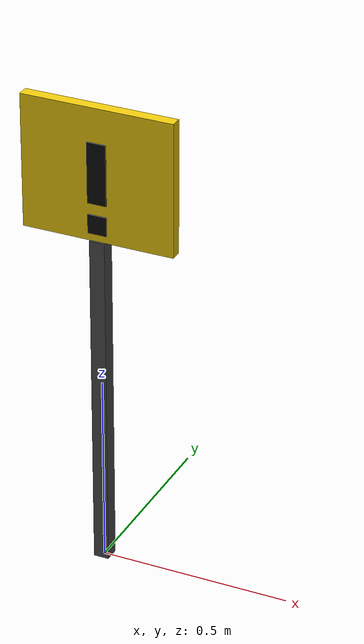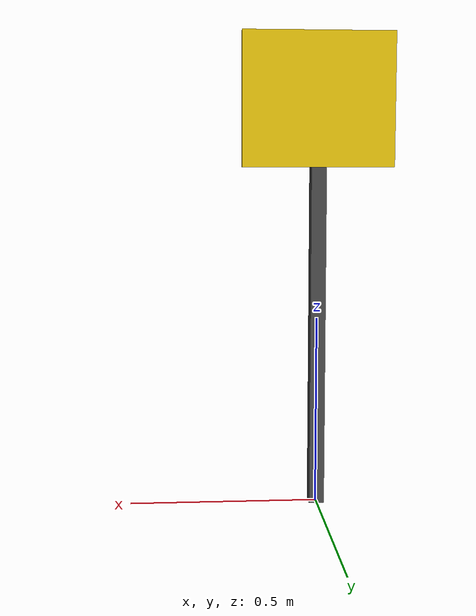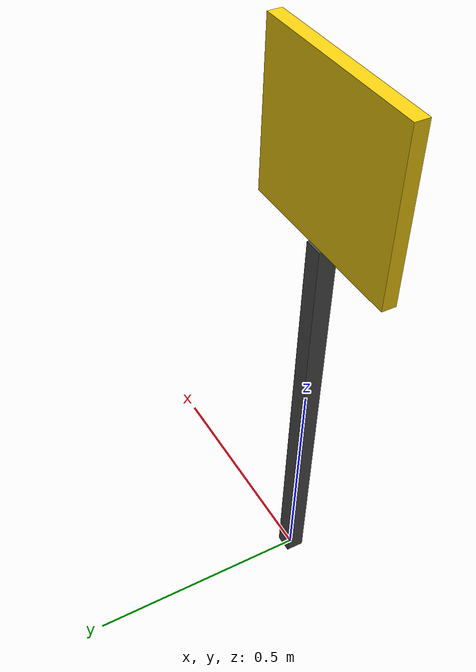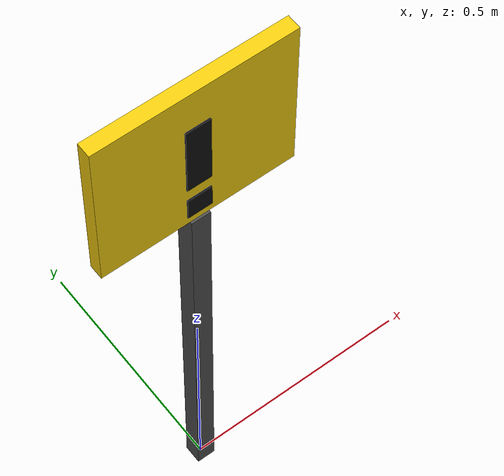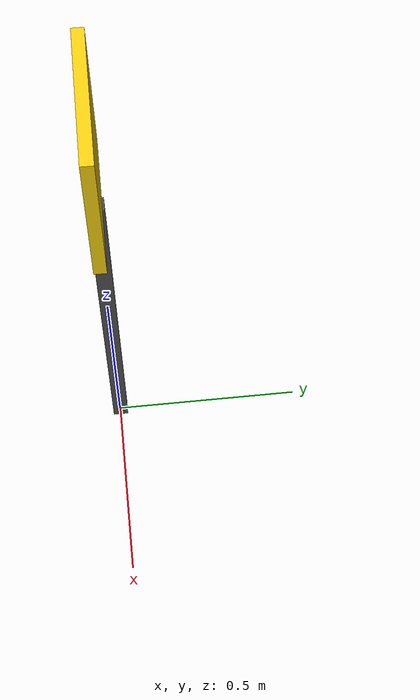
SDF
<?xml version="1.0"?>
<sdf version="1.9">
  <model name="hazard_sign">
    <static>true</static>

    <!-- Label plugin at model level — applies to all visuals -->
    <plugin filename="gz-sim-label-system" name="gz::sim::systems::Label">
      <label>3</label>
    </plugin>

    <!-- ── Stand / pole ─────────────────────────────────────────────────── -->
    <link name="pole">
      <pose>0 0 0.45 0 0 0</pose>

      <visual name="pole_visual">
        <geometry>
          <box>
            <size>0.04 0.04 0.90</size>
          </box>
        </geometry>
        <material>
          <ambient>0.3 0.3 0.3 1</ambient>
          <diffuse>0.3 0.3 0.3 1</diffuse>
        </material>
      </visual>

      <collision name="pole_collision">
        <geometry>
          <box>
            <size>0.04 0.04 0.90</size>
          </box>
        </geometry>
      </collision>
    </link>

    <!-- ── Sign board (yellow) ───────────────────────────────────────────── -->
    <link name="sign_board">
      <!-- bottom of sign sits at top of pole (0.90), centre at 0.90 + 0.175 -->
      <pose>0 0 1.075 0 0 0</pose>

      <visual name="sign_visual">
        <geometry>
          <box>
            <size>0.40 0.03 0.35</size>
          </box>
        </geometry>
        <material>
          <ambient>0.95 0.80 0.05 1</ambient>
          <diffuse>0.95 0.80 0.05 1</diffuse>
          <specular>0.2 0.2 0.0 1</specular>
        </material>
      </visual>

      <collision name="sign_collision">
        <geometry>
          <box>
            <size>0.40 0.03 0.35</size>
          </box>
        </geometry>
      </collision>
    </link>

    <!-- ── Exclamation mark — vertical bar (decal on front face of sign) ── -->
    <link name="excl_bar">
      <!-- front face of sign is at y=-0.015; push decal just forward -->
      <pose>0 -0.016 1.08 0 0 0</pose>

      <visual name="excl_bar_visual">
        <geometry>
          <box>
            <size>0.05 0.004 0.16</size>
          </box>
        </geometry>
        <material>
          <ambient>0.05 0.05 0.05 1</ambient>
          <diffuse>0.05 0.05 0.05 1</diffuse>
        </material>
      </visual>
    </link>

    <!-- ── Exclamation mark — dot ────────────────────────────────────────── -->
    <link name="excl_dot">
      <pose>0 -0.016 0.945 0 0 0</pose>

      <visual name="excl_dot_visual">
        <geometry>
          <box>
            <size>0.05 0.004 0.05</size>
          </box>
        </geometry>
        <material>
          <ambient>0.05 0.05 0.05 1</ambient>
          <diffuse>0.05 0.05 0.05 1</diffuse>
        </material>
      </visual>
    </link>

  </model>
</sdf>
